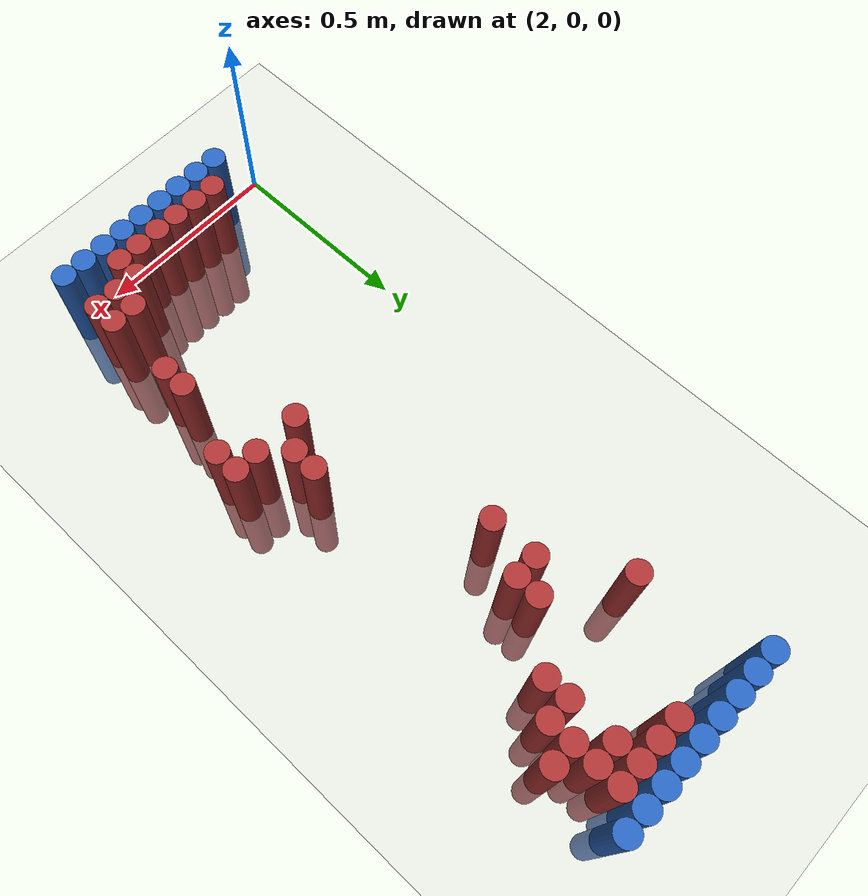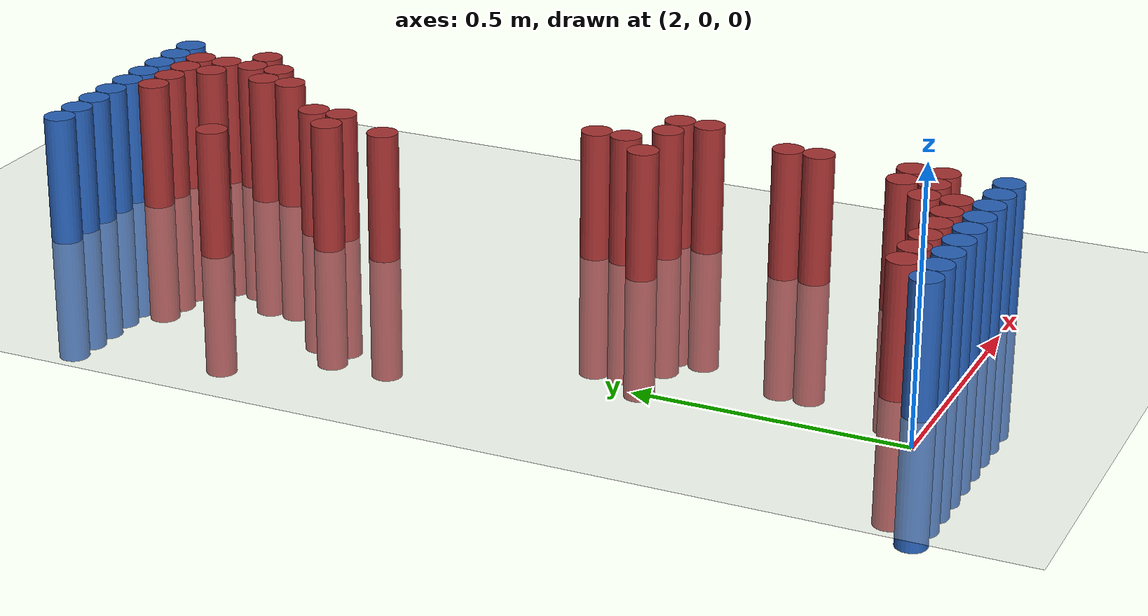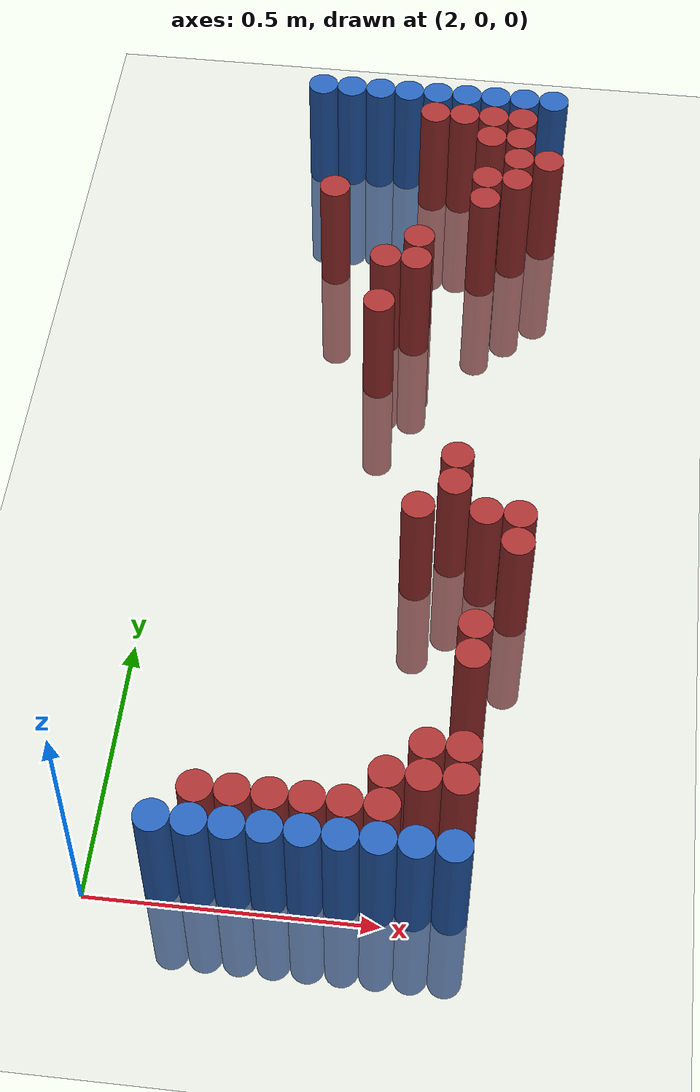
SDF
<sdf version="1.6">
 <world name="default">
  <model name="ground_plane">
   <static>1</static>
   <link name="link">
    <collision name="collision">
     <geometry><plane><normal>0 0 1</normal><size>100 100</size></plane></geometry>
     <surface><friction><ode><mu>100</mu><mu2>50</mu2></ode></friction></surface>
    </collision>
    <visual name="visual">
     <cast_shadows>0</cast_shadows>
     <geometry><plane><normal>0 0 1</normal><size>100 100</size></plane></geometry>
     <material>
      <script><uri>file://media/materials/scripts/gazebo.material</uri><name>Gazebo/Grey</name></script>
     </material>
    </visual>
   </link>
  </model>
  <model name="unit_cylinder_97">
   <static>1</static>
   <pose>2.190000 1.770000 0.000000 0.000000 0.000000 0.000000</pose>
   <link name="link">
    <inertial>
     <mass>1</mass>
     <inertia><ixx>0.145833</ixx><ixy>0</ixy><ixz>0</ixz><iyy>0.145833</iyy><iyz>0</iyz><izz>0.125</izz></inertia>
    </inertial>
    <collision name="collision">
     <geometry><cylinder><radius>0.030000</radius><length>0.5</length></cylinder></geometry>
    </collision>
    <visual name="visual">
     <geometry><cylinder><radius>0.030000</radius><length>0.5</length></cylinder></geometry>
     <material>
      <ambient>0.152000 0.379000 0.720000 1</ambient>
      <diffuse>0.152000 0.379000 0.720000 1</diffuse>
     </material>
     <material>
      <script><name>Gazebo/Grey</name><uri>file://media/materials/scripts/gazebo.material</uri></script>
     </material>
    </visual>
   </link>
  </model>
  <model name="unit_cylinder_98">
   <static>1</static>
   <pose>2.250000 1.770000 0.000000 0.000000 0.000000 0.000000</pose>
   <link name="link">
    <inertial>
     <mass>1</mass>
     <inertia><ixx>0.145833</ixx><ixy>0</ixy><ixz>0</ixz><iyy>0.145833</iyy><iyz>0</iyz><izz>0.125</izz></inertia>
    </inertial>
    <collision name="collision">
     <geometry><cylinder><radius>0.030000</radius><length>0.5</length></cylinder></geometry>
    </collision>
    <visual name="visual">
     <geometry><cylinder><radius>0.030000</radius><length>0.5</length></cylinder></geometry>
     <material>
      <ambient>0.152000 0.379000 0.720000 1</ambient>
      <diffuse>0.152000 0.379000 0.720000 1</diffuse>
     </material>
     <material>
      <script><name>Gazebo/Grey</name><uri>file://media/materials/scripts/gazebo.material</uri></script>
     </material>
    </visual>
   </link>
  </model>
  <model name="unit_cylinder_99">
   <static>1</static>
   <pose>2.310000 1.770000 0.000000 0.000000 0.000000 0.000000</pose>
   <link name="link">
    <inertial>
     <mass>1</mass>
     <inertia><ixx>0.145833</ixx><ixy>0</ixy><ixz>0</ixz><iyy>0.145833</iyy><iyz>0</iyz><izz>0.125</izz></inertia>
    </inertial>
    <collision name="collision">
     <geometry><cylinder><radius>0.030000</radius><length>0.5</length></cylinder></geometry>
    </collision>
    <visual name="visual">
     <geometry><cylinder><radius>0.030000</radius><length>0.5</length></cylinder></geometry>
     <material>
      <ambient>0.152000 0.379000 0.720000 1</ambient>
      <diffuse>0.152000 0.379000 0.720000 1</diffuse>
     </material>
     <material>
      <script><name>Gazebo/Grey</name><uri>file://media/materials/scripts/gazebo.material</uri></script>
     </material>
    </visual>
   </link>
  </model>
  <model name="unit_cylinder_100">
   <static>1</static>
   <pose>2.370000 1.770000 0.000000 0.000000 0.000000 0.000000</pose>
   <link name="link">
    <inertial>
     <mass>1</mass>
     <inertia><ixx>0.145833</ixx><ixy>0</ixy><ixz>0</ixz><iyy>0.145833</iyy><iyz>0</iyz><izz>0.125</izz></inertia>
    </inertial>
    <collision name="collision">
     <geometry><cylinder><radius>0.030000</radius><length>0.5</length></cylinder></geometry>
    </collision>
    <visual name="visual">
     <geometry><cylinder><radius>0.030000</radius><length>0.5</length></cylinder></geometry>
     <material>
      <ambient>0.152000 0.379000 0.720000 1</ambient>
      <diffuse>0.152000 0.379000 0.720000 1</diffuse>
     </material>
     <material>
      <script><name>Gazebo/Grey</name><uri>file://media/materials/scripts/gazebo.material</uri></script>
     </material>
    </visual>
   </link>
  </model>
  <model name="unit_cylinder_101">
   <static>1</static>
   <pose>2.430000 1.770000 0.000000 0.000000 0.000000 0.000000</pose>
   <link name="link">
    <inertial>
     <mass>1</mass>
     <inertia><ixx>0.145833</ixx><ixy>0</ixy><ixz>0</ixz><iyy>0.145833</iyy><iyz>0</iyz><izz>0.125</izz></inertia>
    </inertial>
    <collision name="collision">
     <geometry><cylinder><radius>0.030000</radius><length>0.5</length></cylinder></geometry>
    </collision>
    <visual name="visual">
     <geometry><cylinder><radius>0.030000</radius><length>0.5</length></cylinder></geometry>
     <material>
      <ambient>0.152000 0.379000 0.720000 1</ambient>
      <diffuse>0.152000 0.379000 0.720000 1</diffuse>
     </material>
     <material>
      <script><name>Gazebo/Grey</name><uri>file://media/materials/scripts/gazebo.material</uri></script>
     </material>
    </visual>
   </link>
  </model>
  <model name="unit_cylinder_102">
   <static>1</static>
   <pose>2.490000 1.770000 0.000000 0.000000 0.000000 0.000000</pose>
   <link name="link">
    <inertial>
     <mass>1</mass>
     <inertia><ixx>0.145833</ixx><ixy>0</ixy><ixz>0</ixz><iyy>0.145833</iyy><iyz>0</iyz><izz>0.125</izz></inertia>
    </inertial>
    <collision name="collision">
     <geometry><cylinder><radius>0.030000</radius><length>0.5</length></cylinder></geometry>
    </collision>
    <visual name="visual">
     <geometry><cylinder><radius>0.030000</radius><length>0.5</length></cylinder></geometry>
     <material>
      <ambient>0.152000 0.379000 0.720000 1</ambient>
      <diffuse>0.152000 0.379000 0.720000 1</diffuse>
     </material>
     <material>
      <script><name>Gazebo/Grey</name><uri>file://media/materials/scripts/gazebo.material</uri></script>
     </material>
    </visual>
   </link>
  </model>
  <model name="unit_cylinder_103">
   <static>1</static>
   <pose>2.550000 1.770000 0.000000 0.000000 0.000000 0.000000</pose>
   <link name="link">
    <inertial>
     <mass>1</mass>
     <inertia><ixx>0.145833</ixx><ixy>0</ixy><ixz>0</ixz><iyy>0.145833</iyy><iyz>0</iyz><izz>0.125</izz></inertia>
    </inertial>
    <collision name="collision">
     <geometry><cylinder><radius>0.030000</radius><length>0.5</length></cylinder></geometry>
    </collision>
    <visual name="visual">
     <geometry><cylinder><radius>0.030000</radius><length>0.5</length></cylinder></geometry>
     <material>
      <ambient>0.152000 0.379000 0.720000 1</ambient>
      <diffuse>0.152000 0.379000 0.720000 1</diffuse>
     </material>
     <material>
      <script><name>Gazebo/Grey</name><uri>file://media/materials/scripts/gazebo.material</uri></script>
     </material>
    </visual>
   </link>
  </model>
  <model name="unit_cylinder_104">
   <static>1</static>
   <pose>2.610000 1.770000 0.000000 0.000000 0.000000 0.000000</pose>
   <link name="link">
    <inertial>
     <mass>1</mass>
     <inertia><ixx>0.145833</ixx><ixy>0</ixy><ixz>0</ixz><iyy>0.145833</iyy><iyz>0</iyz><izz>0.125</izz></inertia>
    </inertial>
    <collision name="collision">
     <geometry><cylinder><radius>0.030000</radius><length>0.5</length></cylinder></geometry>
    </collision>
    <visual name="visual">
     <geometry><cylinder><radius>0.030000</radius><length>0.5</length></cylinder></geometry>
     <material>
      <ambient>0.152000 0.379000 0.720000 1</ambient>
      <diffuse>0.152000 0.379000 0.720000 1</diffuse>
     </material>
     <material>
      <script><name>Gazebo/Grey</name><uri>file://media/materials/scripts/gazebo.material</uri></script>
     </material>
    </visual>
   </link>
  </model>
  <model name="unit_cylinder_105">
   <static>1</static>
   <pose>2.670000 1.770000 0.000000 0.000000 0.000000 0.000000</pose>
   <link name="link">
    <inertial>
     <mass>1</mass>
     <inertia><ixx>0.145833</ixx><ixy>0</ixy><ixz>0</ixz><iyy>0.145833</iyy><iyz>0</iyz><izz>0.125</izz></inertia>
    </inertial>
    <collision name="collision">
     <geometry><cylinder><radius>0.030000</radius><length>0.5</length></cylinder></geometry>
    </collision>
    <visual name="visual">
     <geometry><cylinder><radius>0.030000</radius><length>0.5</length></cylinder></geometry>
     <material>
      <ambient>0.152000 0.379000 0.720000 1</ambient>
      <diffuse>0.152000 0.379000 0.720000 1</diffuse>
     </material>
     <material>
      <script><name>Gazebo/Grey</name><uri>file://media/materials/scripts/gazebo.material</uri></script>
     </material>
    </visual>
   </link>
  </model>
  <model name="unit_cylinder_125">
   <static>1</static>
   <pose>2.430000 1.710000 0.000000 0.000000 0.000000 0.000000</pose>
   <link name="link">
    <inertial>
     <mass>1</mass>
     <inertia><ixx>0.145833</ixx><ixy>0</ixy><ixz>0</ixz><iyy>0.145833</iyy><iyz>0</iyz><izz>0.125</izz></inertia>
    </inertial>
    <collision name="collision">
     <geometry><cylinder><radius>0.030000</radius><length>0.5</length></cylinder></geometry>
    </collision>
    <visual name="visual">
     <geometry><cylinder><radius>0.030000</radius><length>0.5</length></cylinder></geometry>
     <material>
      <ambient>0.648000 0.192000 0.192000 1</ambient>
      <diffuse>0.648000 0.192000 0.192000 1</diffuse>
     </material>
     <material>
      <script><name>Gazebo/Grey</name><uri>file://media/materials/scripts/gazebo.material</uri></script>
     </material>
    </visual>
   </link>
  </model>
  <model name="unit_cylinder_126">
   <static>1</static>
   <pose>2.490000 1.710000 0.000000 0.000000 0.000000 0.000000</pose>
   <link name="link">
    <inertial>
     <mass>1</mass>
     <inertia><ixx>0.145833</ixx><ixy>0</ixy><ixz>0</ixz><iyy>0.145833</iyy><iyz>0</iyz><izz>0.125</izz></inertia>
    </inertial>
    <collision name="collision">
     <geometry><cylinder><radius>0.030000</radius><length>0.5</length></cylinder></geometry>
    </collision>
    <visual name="visual">
     <geometry><cylinder><radius>0.030000</radius><length>0.5</length></cylinder></geometry>
     <material>
      <ambient>0.648000 0.192000 0.192000 1</ambient>
      <diffuse>0.648000 0.192000 0.192000 1</diffuse>
     </material>
     <material>
      <script><name>Gazebo/Grey</name><uri>file://media/materials/scripts/gazebo.material</uri></script>
     </material>
    </visual>
   </link>
  </model>
  <model name="unit_cylinder_127">
   <static>1</static>
   <pose>2.550000 1.710000 0.000000 0.000000 0.000000 0.000000</pose>
   <link name="link">
    <inertial>
     <mass>1</mass>
     <inertia><ixx>0.145833</ixx><ixy>0</ixy><ixz>0</ixz><iyy>0.145833</iyy><iyz>0</iyz><izz>0.125</izz></inertia>
    </inertial>
    <collision name="collision">
     <geometry><cylinder><radius>0.030000</radius><length>0.5</length></cylinder></geometry>
    </collision>
    <visual name="visual">
     <geometry><cylinder><radius>0.030000</radius><length>0.5</length></cylinder></geometry>
     <material>
      <ambient>0.648000 0.192000 0.192000 1</ambient>
      <diffuse>0.648000 0.192000 0.192000 1</diffuse>
     </material>
     <material>
      <script><name>Gazebo/Grey</name><uri>file://media/materials/scripts/gazebo.material</uri></script>
     </material>
    </visual>
   </link>
  </model>
  <model name="unit_cylinder_128">
   <static>1</static>
   <pose>2.610000 1.710000 0.000000 0.000000 0.000000 0.000000</pose>
   <link name="link">
    <inertial>
     <mass>1</mass>
     <inertia><ixx>0.145833</ixx><ixy>0</ixy><ixz>0</ixz><iyy>0.145833</iyy><iyz>0</iyz><izz>0.125</izz></inertia>
    </inertial>
    <collision name="collision">
     <geometry><cylinder><radius>0.030000</radius><length>0.5</length></cylinder></geometry>
    </collision>
    <visual name="visual">
     <geometry><cylinder><radius>0.030000</radius><length>0.5</length></cylinder></geometry>
     <material>
      <ambient>0.648000 0.192000 0.192000 1</ambient>
      <diffuse>0.648000 0.192000 0.192000 1</diffuse>
     </material>
     <material>
      <script><name>Gazebo/Grey</name><uri>file://media/materials/scripts/gazebo.material</uri></script>
     </material>
    </visual>
   </link>
  </model>
  <model name="unit_cylinder_140">
   <static>1</static>
   <pose>2.550000 1.650000 0.000000 0.000000 0.000000 0.000000</pose>
   <link name="link">
    <inertial>
     <mass>1</mass>
     <inertia><ixx>0.145833</ixx><ixy>0</ixy><ixz>0</ixz><iyy>0.145833</iyy><iyz>0</iyz><izz>0.125</izz></inertia>
    </inertial>
    <collision name="collision">
     <geometry><cylinder><radius>0.030000</radius><length>0.5</length></cylinder></geometry>
    </collision>
    <visual name="visual">
     <geometry><cylinder><radius>0.030000</radius><length>0.5</length></cylinder></geometry>
     <material>
      <ambient>0.648000 0.192000 0.192000 1</ambient>
      <diffuse>0.648000 0.192000 0.192000 1</diffuse>
     </material>
     <material>
      <script><name>Gazebo/Grey</name><uri>file://media/materials/scripts/gazebo.material</uri></script>
     </material>
    </visual>
   </link>
  </model>
  <model name="unit_cylinder_141">
   <static>1</static>
   <pose>2.610000 1.650000 0.000000 0.000000 0.000000 0.000000</pose>
   <link name="link">
    <inertial>
     <mass>1</mass>
     <inertia><ixx>0.145833</ixx><ixy>0</ixy><ixz>0</ixz><iyy>0.145833</iyy><iyz>0</iyz><izz>0.125</izz></inertia>
    </inertial>
    <collision name="collision">
     <geometry><cylinder><radius>0.030000</radius><length>0.5</length></cylinder></geometry>
    </collision>
    <visual name="visual">
     <geometry><cylinder><radius>0.030000</radius><length>0.5</length></cylinder></geometry>
     <material>
      <ambient>0.648000 0.192000 0.192000 1</ambient>
      <diffuse>0.648000 0.192000 0.192000 1</diffuse>
     </material>
     <material>
      <script><name>Gazebo/Grey</name><uri>file://media/materials/scripts/gazebo.material</uri></script>
     </material>
    </visual>
   </link>
  </model>
  <model name="unit_cylinder_147">
   <static>1</static>
   <pose>2.610000 1.590000 0.000000 0.000000 0.000000 0.000000</pose>
   <link name="link">
    <inertial>
     <mass>1</mass>
     <inertia><ixx>0.145833</ixx><ixy>0</ixy><ixz>0</ixz><iyy>0.145833</iyy><iyz>0</iyz><izz>0.125</izz></inertia>
    </inertial>
    <collision name="collision">
     <geometry><cylinder><radius>0.030000</radius><length>0.5</length></cylinder></geometry>
    </collision>
    <visual name="visual">
     <geometry><cylinder><radius>0.030000</radius><length>0.5</length></cylinder></geometry>
     <material>
      <ambient>0.648000 0.192000 0.192000 1</ambient>
      <diffuse>0.648000 0.192000 0.192000 1</diffuse>
     </material>
     <material>
      <script><name>Gazebo/Grey</name><uri>file://media/materials/scripts/gazebo.material</uri></script>
     </material>
    </visual>
   </link>
  </model>
  <model name="unit_cylinder_148">
   <static>1</static>
   <pose>2.670000 1.590000 0.000000 0.000000 0.000000 0.000000</pose>
   <link name="link">
    <inertial>
     <mass>1</mass>
     <inertia><ixx>0.145833</ixx><ixy>0</ixy><ixz>0</ixz><iyy>0.145833</iyy><iyz>0</iyz><izz>0.125</izz></inertia>
    </inertial>
    <collision name="collision">
     <geometry><cylinder><radius>0.030000</radius><length>0.5</length></cylinder></geometry>
    </collision>
    <visual name="visual">
     <geometry><cylinder><radius>0.030000</radius><length>0.5</length></cylinder></geometry>
     <material>
      <ambient>0.648000 0.192000 0.192000 1</ambient>
      <diffuse>0.648000 0.192000 0.192000 1</diffuse>
     </material>
     <material>
      <script><name>Gazebo/Grey</name><uri>file://media/materials/scripts/gazebo.material</uri></script>
     </material>
    </visual>
   </link>
  </model>
  <model name="unit_cylinder_152">
   <static>1</static>
   <pose>2.550000 1.530000 0.000000 0.000000 0.000000 0.000000</pose>
   <link name="link">
    <inertial>
     <mass>1</mass>
     <inertia><ixx>0.145833</ixx><ixy>0</ixy><ixz>0</ixz><iyy>0.145833</iyy><iyz>0</iyz><izz>0.125</izz></inertia>
    </inertial>
    <collision name="collision">
     <geometry><cylinder><radius>0.030000</radius><length>0.5</length></cylinder></geometry>
    </collision>
    <visual name="visual">
     <geometry><cylinder><radius>0.030000</radius><length>0.5</length></cylinder></geometry>
     <material>
      <ambient>0.648000 0.192000 0.192000 1</ambient>
      <diffuse>0.648000 0.192000 0.192000 1</diffuse>
     </material>
     <material>
      <script><name>Gazebo/Grey</name><uri>file://media/materials/scripts/gazebo.material</uri></script>
     </material>
    </visual>
   </link>
  </model>
  <model name="unit_cylinder_153">
   <static>1</static>
   <pose>2.610000 1.530000 0.000000 0.000000 0.000000 0.000000</pose>
   <link name="link">
    <inertial>
     <mass>1</mass>
     <inertia><ixx>0.145833</ixx><ixy>0</ixy><ixz>0</ixz><iyy>0.145833</iyy><iyz>0</iyz><izz>0.125</izz></inertia>
    </inertial>
    <collision name="collision">
     <geometry><cylinder><radius>0.030000</radius><length>0.5</length></cylinder></geometry>
    </collision>
    <visual name="visual">
     <geometry><cylinder><radius>0.030000</radius><length>0.5</length></cylinder></geometry>
     <material>
      <ambient>0.648000 0.192000 0.192000 1</ambient>
      <diffuse>0.648000 0.192000 0.192000 1</diffuse>
     </material>
     <material>
      <script><name>Gazebo/Grey</name><uri>file://media/materials/scripts/gazebo.material</uri></script>
     </material>
    </visual>
   </link>
  </model>
  <model name="unit_cylinder_156">
   <static>1</static>
   <pose>2.250000 1.470000 0.000000 0.000000 0.000000 0.000000</pose>
   <link name="link">
    <inertial>
     <mass>1</mass>
     <inertia><ixx>0.145833</ixx><ixy>0</ixy><ixz>0</ixz><iyy>0.145833</iyy><iyz>0</iyz><izz>0.125</izz></inertia>
    </inertial>
    <collision name="collision">
     <geometry><cylinder><radius>0.030000</radius><length>0.5</length></cylinder></geometry>
    </collision>
    <visual name="visual">
     <geometry><cylinder><radius>0.030000</radius><length>0.5</length></cylinder></geometry>
     <material>
      <ambient>0.648000 0.192000 0.192000 1</ambient>
      <diffuse>0.648000 0.192000 0.192000 1</diffuse>
     </material>
     <material>
      <script><name>Gazebo/Grey</name><uri>file://media/materials/scripts/gazebo.material</uri></script>
     </material>
    </visual>
   </link>
  </model>
  <model name="unit_cylinder_157">
   <static>1</static>
   <pose>2.550000 1.470000 0.000000 0.000000 0.000000 0.000000</pose>
   <link name="link">
    <inertial>
     <mass>1</mass>
     <inertia><ixx>0.145833</ixx><ixy>0</ixy><ixz>0</ixz><iyy>0.145833</iyy><iyz>0</iyz><izz>0.125</izz></inertia>
    </inertial>
    <collision name="collision">
     <geometry><cylinder><radius>0.030000</radius><length>0.5</length></cylinder></geometry>
    </collision>
    <visual name="visual">
     <geometry><cylinder><radius>0.030000</radius><length>0.5</length></cylinder></geometry>
     <material>
      <ambient>0.648000 0.192000 0.192000 1</ambient>
      <diffuse>0.648000 0.192000 0.192000 1</diffuse>
     </material>
     <material>
      <script><name>Gazebo/Grey</name><uri>file://media/materials/scripts/gazebo.material</uri></script>
     </material>
    </visual>
   </link>
  </model>
  <model name="unit_cylinder_160">
   <static>1</static>
   <pose>2.430000 1.350000 0.000000 0.000000 0.000000 0.000000</pose>
   <link name="link">
    <inertial>
     <mass>1</mass>
     <inertia><ixx>0.145833</ixx><ixy>0</ixy><ixz>0</ixz><iyy>0.145833</iyy><iyz>0</iyz><izz>0.125</izz></inertia>
    </inertial>
    <collision name="collision">
     <geometry><cylinder><radius>0.030000</radius><length>0.5</length></cylinder></geometry>
    </collision>
    <visual name="visual">
     <geometry><cylinder><radius>0.030000</radius><length>0.5</length></cylinder></geometry>
     <material>
      <ambient>0.648000 0.192000 0.192000 1</ambient>
      <diffuse>0.648000 0.192000 0.192000 1</diffuse>
     </material>
     <material>
      <script><name>Gazebo/Grey</name><uri>file://media/materials/scripts/gazebo.material</uri></script>
     </material>
    </visual>
   </link>
  </model>
  <model name="unit_cylinder_163">
   <static>1</static>
   <pose>2.370000 1.290000 0.000000 0.000000 0.000000 0.000000</pose>
   <link name="link">
    <inertial>
     <mass>1</mass>
     <inertia><ixx>0.145833</ixx><ixy>0</ixy><ixz>0</ixz><iyy>0.145833</iyy><iyz>0</iyz><izz>0.125</izz></inertia>
    </inertial>
    <collision name="collision">
     <geometry><cylinder><radius>0.030000</radius><length>0.5</length></cylinder></geometry>
    </collision>
    <visual name="visual">
     <geometry><cylinder><radius>0.030000</radius><length>0.5</length></cylinder></geometry>
     <material>
      <ambient>0.648000 0.192000 0.192000 1</ambient>
      <diffuse>0.648000 0.192000 0.192000 1</diffuse>
     </material>
     <material>
      <script><name>Gazebo/Grey</name><uri>file://media/materials/scripts/gazebo.material</uri></script>
     </material>
    </visual>
   </link>
  </model>
  <model name="unit_cylinder_164">
   <static>1</static>
   <pose>2.430000 1.290000 0.000000 0.000000 0.000000 0.000000</pose>
   <link name="link">
    <inertial>
     <mass>1</mass>
     <inertia><ixx>0.145833</ixx><ixy>0</ixy><ixz>0</ixz><iyy>0.145833</iyy><iyz>0</iyz><izz>0.125</izz></inertia>
    </inertial>
    <collision name="collision">
     <geometry><cylinder><radius>0.030000</radius><length>0.5</length></cylinder></geometry>
    </collision>
    <visual name="visual">
     <geometry><cylinder><radius>0.030000</radius><length>0.5</length></cylinder></geometry>
     <material>
      <ambient>0.648000 0.192000 0.192000 1</ambient>
      <diffuse>0.648000 0.192000 0.192000 1</diffuse>
     </material>
     <material>
      <script><name>Gazebo/Grey</name><uri>file://media/materials/scripts/gazebo.material</uri></script>
     </material>
    </visual>
   </link>
  </model>
  <model name="unit_cylinder_170">
   <static>1</static>
   <pose>2.370000 1.170000 0.000000 0.000000 0.000000 0.000000</pose>
   <link name="link">
    <inertial>
     <mass>1</mass>
     <inertia><ixx>0.145833</ixx><ixy>0</ixy><ixz>0</ixz><iyy>0.145833</iyy><iyz>0</iyz><izz>0.125</izz></inertia>
    </inertial>
    <collision name="collision">
     <geometry><cylinder><radius>0.030000</radius><length>0.5</length></cylinder></geometry>
    </collision>
    <visual name="visual">
     <geometry><cylinder><radius>0.030000</radius><length>0.5</length></cylinder></geometry>
     <material>
      <ambient>0.648000 0.192000 0.192000 1</ambient>
      <diffuse>0.648000 0.192000 0.192000 1</diffuse>
     </material>
     <material>
      <script><name>Gazebo/Grey</name><uri>file://media/materials/scripts/gazebo.material</uri></script>
     </material>
    </visual>
   </link>
  </model>
  <model name="unit_cylinder_194">
   <static>1</static>
   <pose>2.550000 0.810000 0.000000 0.000000 0.000000 0.000000</pose>
   <link name="link">
    <inertial>
     <mass>1</mass>
     <inertia><ixx>0.145833</ixx><ixy>0</ixy><ixz>0</ixz><iyy>0.145833</iyy><iyz>0</iyz><izz>0.125</izz></inertia>
    </inertial>
    <collision name="collision">
     <geometry><cylinder><radius>0.030000</radius><length>0.5</length></cylinder></geometry>
    </collision>
    <visual name="visual">
     <geometry><cylinder><radius>0.030000</radius><length>0.5</length></cylinder></geometry>
     <material>
      <ambient>0.648000 0.192000 0.192000 1</ambient>
      <diffuse>0.648000 0.192000 0.192000 1</diffuse>
     </material>
     <material>
      <script><name>Gazebo/Grey</name><uri>file://media/materials/scripts/gazebo.material</uri></script>
     </material>
    </visual>
   </link>
  </model>
  <model name="unit_cylinder_195">
   <static>1</static>
   <pose>2.550000 0.750000 0.000000 0.000000 0.000000 0.000000</pose>
   <link name="link">
    <inertial>
     <mass>1</mass>
     <inertia><ixx>0.145833</ixx><ixy>0</ixy><ixz>0</ixz><iyy>0.145833</iyy><iyz>0</iyz><izz>0.125</izz></inertia>
    </inertial>
    <collision name="collision">
     <geometry><cylinder><radius>0.030000</radius><length>0.5</length></cylinder></geometry>
    </collision>
    <visual name="visual">
     <geometry><cylinder><radius>0.030000</radius><length>0.5</length></cylinder></geometry>
     <material>
      <ambient>0.648000 0.192000 0.192000 1</ambient>
      <diffuse>0.648000 0.192000 0.192000 1</diffuse>
     </material>
     <material>
      <script><name>Gazebo/Grey</name><uri>file://media/materials/scripts/gazebo.material</uri></script>
     </material>
    </visual>
   </link>
  </model>
  <model name="unit_cylinder_198">
   <static>1</static>
   <pose>2.490000 0.690000 0.000000 0.000000 0.000000 0.000000</pose>
   <link name="link">
    <inertial>
     <mass>1</mass>
     <inertia><ixx>0.145833</ixx><ixy>0</ixy><ixz>0</ixz><iyy>0.145833</iyy><iyz>0</iyz><izz>0.125</izz></inertia>
    </inertial>
    <collision name="collision">
     <geometry><cylinder><radius>0.030000</radius><length>0.5</length></cylinder></geometry>
    </collision>
    <visual name="visual">
     <geometry><cylinder><radius>0.030000</radius><length>0.5</length></cylinder></geometry>
     <material>
      <ambient>0.648000 0.192000 0.192000 1</ambient>
      <diffuse>0.648000 0.192000 0.192000 1</diffuse>
     </material>
     <material>
      <script><name>Gazebo/Grey</name><uri>file://media/materials/scripts/gazebo.material</uri></script>
     </material>
    </visual>
   </link>
  </model>
  <model name="unit_cylinder_199">
   <static>1</static>
   <pose>2.610000 0.690000 0.000000 0.000000 0.000000 0.000000</pose>
   <link name="link">
    <inertial>
     <mass>1</mass>
     <inertia><ixx>0.145833</ixx><ixy>0</ixy><ixz>0</ixz><iyy>0.145833</iyy><iyz>0</iyz><izz>0.125</izz></inertia>
    </inertial>
    <collision name="collision">
     <geometry><cylinder><radius>0.030000</radius><length>0.5</length></cylinder></geometry>
    </collision>
    <visual name="visual">
     <geometry><cylinder><radius>0.030000</radius><length>0.5</length></cylinder></geometry>
     <material>
      <ambient>0.648000 0.192000 0.192000 1</ambient>
      <diffuse>0.648000 0.192000 0.192000 1</diffuse>
     </material>
     <material>
      <script><name>Gazebo/Grey</name><uri>file://media/materials/scripts/gazebo.material</uri></script>
     </material>
    </visual>
   </link>
  </model>
  <model name="unit_cylinder_200">
   <static>1</static>
   <pose>2.670000 0.690000 0.000000 0.000000 0.000000 0.000000</pose>
   <link name="link">
    <inertial>
     <mass>1</mass>
     <inertia><ixx>0.145833</ixx><ixy>0</ixy><ixz>0</ixz><iyy>0.145833</iyy><iyz>0</iyz><izz>0.125</izz></inertia>
    </inertial>
    <collision name="collision">
     <geometry><cylinder><radius>0.030000</radius><length>0.5</length></cylinder></geometry>
    </collision>
    <visual name="visual">
     <geometry><cylinder><radius>0.030000</radius><length>0.5</length></cylinder></geometry>
     <material>
      <ambient>0.648000 0.192000 0.192000 1</ambient>
      <diffuse>0.648000 0.192000 0.192000 1</diffuse>
     </material>
     <material>
      <script><name>Gazebo/Grey</name><uri>file://media/materials/scripts/gazebo.material</uri></script>
     </material>
    </visual>
   </link>
  </model>
  <model name="unit_cylinder_205">
   <static>1</static>
   <pose>2.670000 0.630000 0.000000 0.000000 0.000000 0.000000</pose>
   <link name="link">
    <inertial>
     <mass>1</mass>
     <inertia><ixx>0.145833</ixx><ixy>0</ixy><ixz>0</ixz><iyy>0.145833</iyy><iyz>0</iyz><izz>0.125</izz></inertia>
    </inertial>
    <collision name="collision">
     <geometry><cylinder><radius>0.030000</radius><length>0.5</length></cylinder></geometry>
    </collision>
    <visual name="visual">
     <geometry><cylinder><radius>0.030000</radius><length>0.5</length></cylinder></geometry>
     <material>
      <ambient>0.648000 0.192000 0.192000 1</ambient>
      <diffuse>0.648000 0.192000 0.192000 1</diffuse>
     </material>
     <material>
      <script><name>Gazebo/Grey</name><uri>file://media/materials/scripts/gazebo.material</uri></script>
     </material>
    </visual>
   </link>
  </model>
  <model name="unit_cylinder_224">
   <static>1</static>
   <pose>2.610000 0.450000 0.000000 0.000000 0.000000 0.000000</pose>
   <link name="link">
    <inertial>
     <mass>1</mass>
     <inertia><ixx>0.145833</ixx><ixy>0</ixy><ixz>0</ixz><iyy>0.145833</iyy><iyz>0</iyz><izz>0.125</izz></inertia>
    </inertial>
    <collision name="collision">
     <geometry><cylinder><radius>0.030000</radius><length>0.5</length></cylinder></geometry>
    </collision>
    <visual name="visual">
     <geometry><cylinder><radius>0.030000</radius><length>0.5</length></cylinder></geometry>
     <material>
      <ambient>0.648000 0.192000 0.192000 1</ambient>
      <diffuse>0.648000 0.192000 0.192000 1</diffuse>
     </material>
     <material>
      <script><name>Gazebo/Grey</name><uri>file://media/materials/scripts/gazebo.material</uri></script>
     </material>
    </visual>
   </link>
  </model>
  <model name="unit_cylinder_234">
   <static>1</static>
   <pose>2.610000 0.390000 0.000000 0.000000 0.000000 0.000000</pose>
   <link name="link">
    <inertial>
     <mass>1</mass>
     <inertia><ixx>0.145833</ixx><ixy>0</ixy><ixz>0</ixz><iyy>0.145833</iyy><iyz>0</iyz><izz>0.125</izz></inertia>
    </inertial>
    <collision name="collision">
     <geometry><cylinder><radius>0.030000</radius><length>0.5</length></cylinder></geometry>
    </collision>
    <visual name="visual">
     <geometry><cylinder><radius>0.030000</radius><length>0.5</length></cylinder></geometry>
     <material>
      <ambient>0.648000 0.192000 0.192000 1</ambient>
      <diffuse>0.648000 0.192000 0.192000 1</diffuse>
     </material>
     <material>
      <script><name>Gazebo/Grey</name><uri>file://media/materials/scripts/gazebo.material</uri></script>
     </material>
    </visual>
   </link>
  </model>
  <model name="unit_cylinder_247">
   <static>1</static>
   <pose>2.550000 0.210000 0.000000 0.000000 0.000000 0.000000</pose>
   <link name="link">
    <inertial>
     <mass>1</mass>
     <inertia><ixx>0.145833</ixx><ixy>0</ixy><ixz>0</ixz><iyy>0.145833</iyy><iyz>0</iyz><izz>0.125</izz></inertia>
    </inertial>
    <collision name="collision">
     <geometry><cylinder><radius>0.030000</radius><length>0.5</length></cylinder></geometry>
    </collision>
    <visual name="visual">
     <geometry><cylinder><radius>0.030000</radius><length>0.5</length></cylinder></geometry>
     <material>
      <ambient>0.648000 0.192000 0.192000 1</ambient>
      <diffuse>0.648000 0.192000 0.192000 1</diffuse>
     </material>
     <material>
      <script><name>Gazebo/Grey</name><uri>file://media/materials/scripts/gazebo.material</uri></script>
     </material>
    </visual>
   </link>
  </model>
  <model name="unit_cylinder_248">
   <static>1</static>
   <pose>2.610000 0.210000 0.000000 0.000000 0.000000 0.000000</pose>
   <link name="link">
    <inertial>
     <mass>1</mass>
     <inertia><ixx>0.145833</ixx><ixy>0</ixy><ixz>0</ixz><iyy>0.145833</iyy><iyz>0</iyz><izz>0.125</izz></inertia>
    </inertial>
    <collision name="collision">
     <geometry><cylinder><radius>0.030000</radius><length>0.5</length></cylinder></geometry>
    </collision>
    <visual name="visual">
     <geometry><cylinder><radius>0.030000</radius><length>0.5</length></cylinder></geometry>
     <material>
      <ambient>0.648000 0.192000 0.192000 1</ambient>
      <diffuse>0.648000 0.192000 0.192000 1</diffuse>
     </material>
     <material>
      <script><name>Gazebo/Grey</name><uri>file://media/materials/scripts/gazebo.material</uri></script>
     </material>
    </visual>
   </link>
  </model>
  <model name="unit_cylinder_253">
   <static>1</static>
   <pose>2.490000 0.150000 0.000000 0.000000 0.000000 0.000000</pose>
   <link name="link">
    <inertial>
     <mass>1</mass>
     <inertia><ixx>0.145833</ixx><ixy>0</ixy><ixz>0</ixz><iyy>0.145833</iyy><iyz>0</iyz><izz>0.125</izz></inertia>
    </inertial>
    <collision name="collision">
     <geometry><cylinder><radius>0.030000</radius><length>0.5</length></cylinder></geometry>
    </collision>
    <visual name="visual">
     <geometry><cylinder><radius>0.030000</radius><length>0.5</length></cylinder></geometry>
     <material>
      <ambient>0.648000 0.192000 0.192000 1</ambient>
      <diffuse>0.648000 0.192000 0.192000 1</diffuse>
     </material>
     <material>
      <script><name>Gazebo/Grey</name><uri>file://media/materials/scripts/gazebo.material</uri></script>
     </material>
    </visual>
   </link>
  </model>
  <model name="unit_cylinder_254">
   <static>1</static>
   <pose>2.550000 0.150000 0.000000 0.000000 0.000000 0.000000</pose>
   <link name="link">
    <inertial>
     <mass>1</mass>
     <inertia><ixx>0.145833</ixx><ixy>0</ixy><ixz>0</ixz><iyy>0.145833</iyy><iyz>0</iyz><izz>0.125</izz></inertia>
    </inertial>
    <collision name="collision">
     <geometry><cylinder><radius>0.030000</radius><length>0.5</length></cylinder></geometry>
    </collision>
    <visual name="visual">
     <geometry><cylinder><radius>0.030000</radius><length>0.5</length></cylinder></geometry>
     <material>
      <ambient>0.648000 0.192000 0.192000 1</ambient>
      <diffuse>0.648000 0.192000 0.192000 1</diffuse>
     </material>
     <material>
      <script><name>Gazebo/Grey</name><uri>file://media/materials/scripts/gazebo.material</uri></script>
     </material>
    </visual>
   </link>
  </model>
  <model name="unit_cylinder_255">
   <static>1</static>
   <pose>2.610000 0.150000 0.000000 0.000000 0.000000 0.000000</pose>
   <link name="link">
    <inertial>
     <mass>1</mass>
     <inertia><ixx>0.145833</ixx><ixy>0</ixy><ixz>0</ixz><iyy>0.145833</iyy><iyz>0</iyz><izz>0.125</izz></inertia>
    </inertial>
    <collision name="collision">
     <geometry><cylinder><radius>0.030000</radius><length>0.5</length></cylinder></geometry>
    </collision>
    <visual name="visual">
     <geometry><cylinder><radius>0.030000</radius><length>0.5</length></cylinder></geometry>
     <material>
      <ambient>0.648000 0.192000 0.192000 1</ambient>
      <diffuse>0.648000 0.192000 0.192000 1</diffuse>
     </material>
     <material>
      <script><name>Gazebo/Grey</name><uri>file://media/materials/scripts/gazebo.material</uri></script>
     </material>
    </visual>
   </link>
  </model>
  <model name="unit_cylinder_264">
   <static>1</static>
   <pose>2.190000 0.090000 0.000000 0.000000 0.000000 0.000000</pose>
   <link name="link">
    <inertial>
     <mass>1</mass>
     <inertia><ixx>0.145833</ixx><ixy>0</ixy><ixz>0</ixz><iyy>0.145833</iyy><iyz>0</iyz><izz>0.125</izz></inertia>
    </inertial>
    <collision name="collision">
     <geometry><cylinder><radius>0.030000</radius><length>0.5</length></cylinder></geometry>
    </collision>
    <visual name="visual">
     <geometry><cylinder><radius>0.030000</radius><length>0.5</length></cylinder></geometry>
     <material>
      <ambient>0.648000 0.192000 0.192000 1</ambient>
      <diffuse>0.648000 0.192000 0.192000 1</diffuse>
     </material>
     <material>
      <script><name>Gazebo/Grey</name><uri>file://media/materials/scripts/gazebo.material</uri></script>
     </material>
    </visual>
   </link>
  </model>
  <model name="unit_cylinder_265">
   <static>1</static>
   <pose>2.250000 0.090000 0.000000 0.000000 0.000000 0.000000</pose>
   <link name="link">
    <inertial>
     <mass>1</mass>
     <inertia><ixx>0.145833</ixx><ixy>0</ixy><ixz>0</ixz><iyy>0.145833</iyy><iyz>0</iyz><izz>0.125</izz></inertia>
    </inertial>
    <collision name="collision">
     <geometry><cylinder><radius>0.030000</radius><length>0.5</length></cylinder></geometry>
    </collision>
    <visual name="visual">
     <geometry><cylinder><radius>0.030000</radius><length>0.5</length></cylinder></geometry>
     <material>
      <ambient>0.648000 0.192000 0.192000 1</ambient>
      <diffuse>0.648000 0.192000 0.192000 1</diffuse>
     </material>
     <material>
      <script><name>Gazebo/Grey</name><uri>file://media/materials/scripts/gazebo.material</uri></script>
     </material>
    </visual>
   </link>
  </model>
  <model name="unit_cylinder_266">
   <static>1</static>
   <pose>2.310000 0.090000 0.000000 0.000000 0.000000 0.000000</pose>
   <link name="link">
    <inertial>
     <mass>1</mass>
     <inertia><ixx>0.145833</ixx><ixy>0</ixy><ixz>0</ixz><iyy>0.145833</iyy><iyz>0</iyz><izz>0.125</izz></inertia>
    </inertial>
    <collision name="collision">
     <geometry><cylinder><radius>0.030000</radius><length>0.5</length></cylinder></geometry>
    </collision>
    <visual name="visual">
     <geometry><cylinder><radius>0.030000</radius><length>0.5</length></cylinder></geometry>
     <material>
      <ambient>0.648000 0.192000 0.192000 1</ambient>
      <diffuse>0.648000 0.192000 0.192000 1</diffuse>
     </material>
     <material>
      <script><name>Gazebo/Grey</name><uri>file://media/materials/scripts/gazebo.material</uri></script>
     </material>
    </visual>
   </link>
  </model>
  <model name="unit_cylinder_267">
   <static>1</static>
   <pose>2.370000 0.090000 0.000000 0.000000 0.000000 0.000000</pose>
   <link name="link">
    <inertial>
     <mass>1</mass>
     <inertia><ixx>0.145833</ixx><ixy>0</ixy><ixz>0</ixz><iyy>0.145833</iyy><iyz>0</iyz><izz>0.125</izz></inertia>
    </inertial>
    <collision name="collision">
     <geometry><cylinder><radius>0.030000</radius><length>0.5</length></cylinder></geometry>
    </collision>
    <visual name="visual">
     <geometry><cylinder><radius>0.030000</radius><length>0.5</length></cylinder></geometry>
     <material>
      <ambient>0.648000 0.192000 0.192000 1</ambient>
      <diffuse>0.648000 0.192000 0.192000 1</diffuse>
     </material>
     <material>
      <script><name>Gazebo/Grey</name><uri>file://media/materials/scripts/gazebo.material</uri></script>
     </material>
    </visual>
   </link>
  </model>
  <model name="unit_cylinder_268">
   <static>1</static>
   <pose>2.430000 0.090000 0.000000 0.000000 0.000000 0.000000</pose>
   <link name="link">
    <inertial>
     <mass>1</mass>
     <inertia><ixx>0.145833</ixx><ixy>0</ixy><ixz>0</ixz><iyy>0.145833</iyy><iyz>0</iyz><izz>0.125</izz></inertia>
    </inertial>
    <collision name="collision">
     <geometry><cylinder><radius>0.030000</radius><length>0.5</length></cylinder></geometry>
    </collision>
    <visual name="visual">
     <geometry><cylinder><radius>0.030000</radius><length>0.5</length></cylinder></geometry>
     <material>
      <ambient>0.648000 0.192000 0.192000 1</ambient>
      <diffuse>0.648000 0.192000 0.192000 1</diffuse>
     </material>
     <material>
      <script><name>Gazebo/Grey</name><uri>file://media/materials/scripts/gazebo.material</uri></script>
     </material>
    </visual>
   </link>
  </model>
  <model name="unit_cylinder_269">
   <static>1</static>
   <pose>2.490000 0.090000 0.000000 0.000000 0.000000 0.000000</pose>
   <link name="link">
    <inertial>
     <mass>1</mass>
     <inertia><ixx>0.145833</ixx><ixy>0</ixy><ixz>0</ixz><iyy>0.145833</iyy><iyz>0</iyz><izz>0.125</izz></inertia>
    </inertial>
    <collision name="collision">
     <geometry><cylinder><radius>0.030000</radius><length>0.5</length></cylinder></geometry>
    </collision>
    <visual name="visual">
     <geometry><cylinder><radius>0.030000</radius><length>0.5</length></cylinder></geometry>
     <material>
      <ambient>0.648000 0.192000 0.192000 1</ambient>
      <diffuse>0.648000 0.192000 0.192000 1</diffuse>
     </material>
     <material>
      <script><name>Gazebo/Grey</name><uri>file://media/materials/scripts/gazebo.material</uri></script>
     </material>
    </visual>
   </link>
  </model>
  <model name="unit_cylinder_286">
   <static>1</static>
   <pose>2.130000 0.030000 0.000000 0.000000 0.000000 0.000000</pose>
   <link name="link">
    <inertial>
     <mass>1</mass>
     <inertia><ixx>0.145833</ixx><ixy>0</ixy><ixz>0</ixz><iyy>0.145833</iyy><iyz>0</iyz><izz>0.125</izz></inertia>
    </inertial>
    <collision name="collision">
     <geometry><cylinder><radius>0.030000</radius><length>0.5</length></cylinder></geometry>
    </collision>
    <visual name="visual">
     <geometry><cylinder><radius>0.030000</radius><length>0.5</length></cylinder></geometry>
     <material>
      <ambient>0.152000 0.379000 0.720000 1</ambient>
      <diffuse>0.152000 0.379000 0.720000 1</diffuse>
     </material>
     <material>
      <script><name>Gazebo/Grey</name><uri>file://media/materials/scripts/gazebo.material</uri></script>
     </material>
    </visual>
   </link>
  </model>
  <model name="unit_cylinder_287">
   <static>1</static>
   <pose>2.190000 0.030000 0.000000 0.000000 0.000000 0.000000</pose>
   <link name="link">
    <inertial>
     <mass>1</mass>
     <inertia><ixx>0.145833</ixx><ixy>0</ixy><ixz>0</ixz><iyy>0.145833</iyy><iyz>0</iyz><izz>0.125</izz></inertia>
    </inertial>
    <collision name="collision">
     <geometry><cylinder><radius>0.030000</radius><length>0.5</length></cylinder></geometry>
    </collision>
    <visual name="visual">
     <geometry><cylinder><radius>0.030000</radius><length>0.5</length></cylinder></geometry>
     <material>
      <ambient>0.152000 0.379000 0.720000 1</ambient>
      <diffuse>0.152000 0.379000 0.720000 1</diffuse>
     </material>
     <material>
      <script><name>Gazebo/Grey</name><uri>file://media/materials/scripts/gazebo.material</uri></script>
     </material>
    </visual>
   </link>
  </model>
  <model name="unit_cylinder_288">
   <static>1</static>
   <pose>2.250000 0.030000 0.000000 0.000000 0.000000 0.000000</pose>
   <link name="link">
    <inertial>
     <mass>1</mass>
     <inertia><ixx>0.145833</ixx><ixy>0</ixy><ixz>0</ixz><iyy>0.145833</iyy><iyz>0</iyz><izz>0.125</izz></inertia>
    </inertial>
    <collision name="collision">
     <geometry><cylinder><radius>0.030000</radius><length>0.5</length></cylinder></geometry>
    </collision>
    <visual name="visual">
     <geometry><cylinder><radius>0.030000</radius><length>0.5</length></cylinder></geometry>
     <material>
      <ambient>0.152000 0.379000 0.720000 1</ambient>
      <diffuse>0.152000 0.379000 0.720000 1</diffuse>
     </material>
     <material>
      <script><name>Gazebo/Grey</name><uri>file://media/materials/scripts/gazebo.material</uri></script>
     </material>
    </visual>
   </link>
  </model>
  <model name="unit_cylinder_289">
   <static>1</static>
   <pose>2.310000 0.030000 0.000000 0.000000 0.000000 0.000000</pose>
   <link name="link">
    <inertial>
     <mass>1</mass>
     <inertia><ixx>0.145833</ixx><ixy>0</ixy><ixz>0</ixz><iyy>0.145833</iyy><iyz>0</iyz><izz>0.125</izz></inertia>
    </inertial>
    <collision name="collision">
     <geometry><cylinder><radius>0.030000</radius><length>0.5</length></cylinder></geometry>
    </collision>
    <visual name="visual">
     <geometry><cylinder><radius>0.030000</radius><length>0.5</length></cylinder></geometry>
     <material>
      <ambient>0.152000 0.379000 0.720000 1</ambient>
      <diffuse>0.152000 0.379000 0.720000 1</diffuse>
     </material>
     <material>
      <script><name>Gazebo/Grey</name><uri>file://media/materials/scripts/gazebo.material</uri></script>
     </material>
    </visual>
   </link>
  </model>
  <model name="unit_cylinder_290">
   <static>1</static>
   <pose>2.370000 0.030000 0.000000 0.000000 0.000000 0.000000</pose>
   <link name="link">
    <inertial>
     <mass>1</mass>
     <inertia><ixx>0.145833</ixx><ixy>0</ixy><ixz>0</ixz><iyy>0.145833</iyy><iyz>0</iyz><izz>0.125</izz></inertia>
    </inertial>
    <collision name="collision">
     <geometry><cylinder><radius>0.030000</radius><length>0.5</length></cylinder></geometry>
    </collision>
    <visual name="visual">
     <geometry><cylinder><radius>0.030000</radius><length>0.5</length></cylinder></geometry>
     <material>
      <ambient>0.152000 0.379000 0.720000 1</ambient>
      <diffuse>0.152000 0.379000 0.720000 1</diffuse>
     </material>
     <material>
      <script><name>Gazebo/Grey</name><uri>file://media/materials/scripts/gazebo.material</uri></script>
     </material>
    </visual>
   </link>
  </model>
  <model name="unit_cylinder_291">
   <static>1</static>
   <pose>2.430000 0.030000 0.000000 0.000000 0.000000 0.000000</pose>
   <link name="link">
    <inertial>
     <mass>1</mass>
     <inertia><ixx>0.145833</ixx><ixy>0</ixy><ixz>0</ixz><iyy>0.145833</iyy><iyz>0</iyz><izz>0.125</izz></inertia>
    </inertial>
    <collision name="collision">
     <geometry><cylinder><radius>0.030000</radius><length>0.5</length></cylinder></geometry>
    </collision>
    <visual name="visual">
     <geometry><cylinder><radius>0.030000</radius><length>0.5</length></cylinder></geometry>
     <material>
      <ambient>0.152000 0.379000 0.720000 1</ambient>
      <diffuse>0.152000 0.379000 0.720000 1</diffuse>
     </material>
     <material>
      <script><name>Gazebo/Grey</name><uri>file://media/materials/scripts/gazebo.material</uri></script>
     </material>
    </visual>
   </link>
  </model>
  <model name="unit_cylinder_292">
   <static>1</static>
   <pose>2.490000 0.030000 0.000000 0.000000 0.000000 0.000000</pose>
   <link name="link">
    <inertial>
     <mass>1</mass>
     <inertia><ixx>0.145833</ixx><ixy>0</ixy><ixz>0</ixz><iyy>0.145833</iyy><iyz>0</iyz><izz>0.125</izz></inertia>
    </inertial>
    <collision name="collision">
     <geometry><cylinder><radius>0.030000</radius><length>0.5</length></cylinder></geometry>
    </collision>
    <visual name="visual">
     <geometry><cylinder><radius>0.030000</radius><length>0.5</length></cylinder></geometry>
     <material>
      <ambient>0.152000 0.379000 0.720000 1</ambient>
      <diffuse>0.152000 0.379000 0.720000 1</diffuse>
     </material>
     <material>
      <script><name>Gazebo/Grey</name><uri>file://media/materials/scripts/gazebo.material</uri></script>
     </material>
    </visual>
   </link>
  </model>
  <model name="unit_cylinder_293">
   <static>1</static>
   <pose>2.550000 0.030000 0.000000 0.000000 0.000000 0.000000</pose>
   <link name="link">
    <inertial>
     <mass>1</mass>
     <inertia><ixx>0.145833</ixx><ixy>0</ixy><ixz>0</ixz><iyy>0.145833</iyy><iyz>0</iyz><izz>0.125</izz></inertia>
    </inertial>
    <collision name="collision">
     <geometry><cylinder><radius>0.030000</radius><length>0.5</length></cylinder></geometry>
    </collision>
    <visual name="visual">
     <geometry><cylinder><radius>0.030000</radius><length>0.5</length></cylinder></geometry>
     <material>
      <ambient>0.152000 0.379000 0.720000 1</ambient>
      <diffuse>0.152000 0.379000 0.720000 1</diffuse>
     </material>
     <material>
      <script><name>Gazebo/Grey</name><uri>file://media/materials/scripts/gazebo.material</uri></script>
     </material>
    </visual>
   </link>
  </model>
  <model name="unit_cylinder_294">
   <static>1</static>
   <pose>2.610000 0.030000 0.000000 0.000000 0.000000 0.000000</pose>
   <link name="link">
    <inertial>
     <mass>1</mass>
     <inertia><ixx>0.145833</ixx><ixy>0</ixy><ixz>0</ixz><iyy>0.145833</iyy><iyz>0</iyz><izz>0.125</izz></inertia>
    </inertial>
    <collision name="collision">
     <geometry><cylinder><radius>0.030000</radius><length>0.5</length></cylinder></geometry>
    </collision>
    <visual name="visual">
     <geometry><cylinder><radius>0.030000</radius><length>0.5</length></cylinder></geometry>
     <material>
      <ambient>0.152000 0.379000 0.720000 1</ambient>
      <diffuse>0.152000 0.379000 0.720000 1</diffuse>
     </material>
     <material>
      <script><name>Gazebo/Grey</name><uri>file://media/materials/scripts/gazebo.material</uri></script>
     </material>
    </visual>
   </link>
  </model>
 </world>
</sdf>
